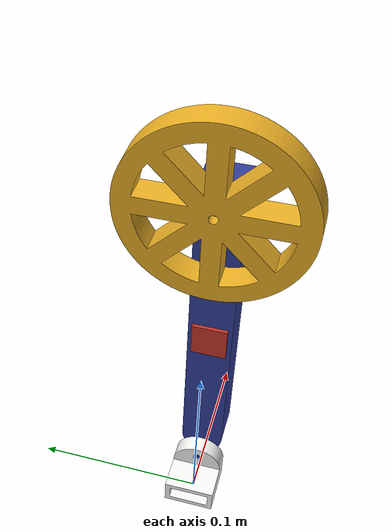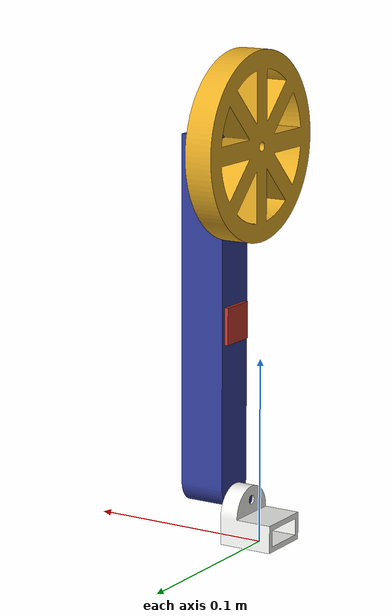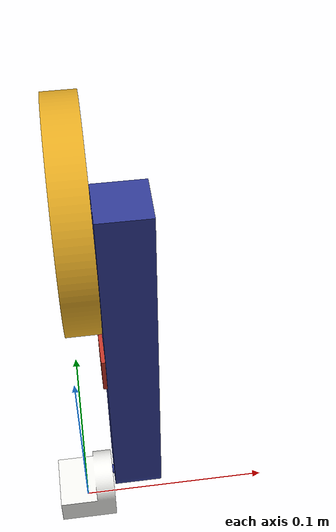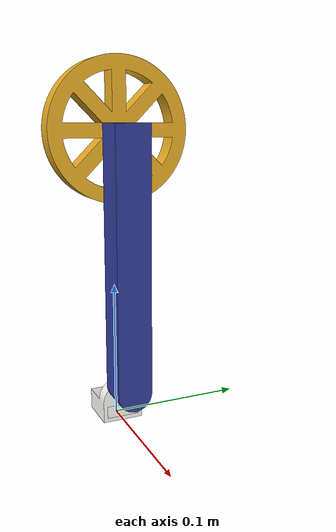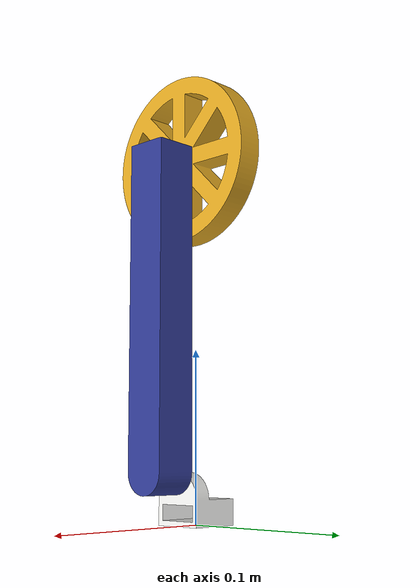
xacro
<?xml version="1.0" ?>
<robot name="reaction_wheel_pendulum" xmlns:xacro="http://www.ros.org/wiki/xacro">

<xacro:include filename="$(find reaction_wheel_pendulum_description)/urdf/materials.xacro" />
<xacro:include filename="$(find reaction_wheel_pendulum_description)/urdf/reaction_wheel_pendulum.trans" />
<xacro:include filename="$(find reaction_wheel_pendulum_description)/urdf/reaction_wheel_pendulum.gazebo" />
<link name="base_link">
  <inertial>
    <origin xyz="0.0032225920282034333 -3.4299415966115704e-18 0.011947016988234405" rpy="0 0 0"/>
    <mass value="0.01097941872610551"/>
    <inertia ixx="2e-06" iyy="2e-06" izz="2e-06" ixy="-0.0" iyz="-0.0" ixz="-0.0"/>
  </inertial>
  <visual>
    <origin xyz="0 0 0" rpy="0 0 0"/>
    <geometry>
      <mesh filename="package://reaction_wheel_pendulum_description/meshes/base_link.stl" scale="0.001 0.001 0.001"/>
    </geometry>
    <material name="abs_white"/>
  </visual>
  <collision>
    <origin xyz="0 0 0" rpy="0 0 0"/>
    <geometry>
      <mesh filename="package://reaction_wheel_pendulum_description/meshes/base_link.stl" scale="0.001 0.001 0.001"/>
    </geometry>
  </collision>
</link>

<link name="pendulum_1">
  <inertial>
    <origin xyz="0.013444451589609451 -8.5147131031773145e-16 0.09631734258207211" rpy="0 0 0"/>
    <mass value="0.13113908956723577"/>
    <inertia ixx="0.000435" iyy="0.000435" izz="1.4e-05" ixy="-0.0" iyz="-0.0" ixz="-0.0"/>
  </inertial>
  <visual>
    <origin xyz="-0.015 -0.0 -0.0225" rpy="0 0 0"/>
    <geometry>
      <mesh filename="package://reaction_wheel_pendulum_description/meshes/pendulum_1.stl" scale="0.001 0.001 0.001"/>
    </geometry>
    <material name="paint_enamel_glossy_blue"/>
  </visual>
  <collision>
    <origin xyz="-0.015 -0.0 -0.0225" rpy="0 0 0"/>
    <geometry>
      <mesh filename="package://reaction_wheel_pendulum_description/meshes/pendulum_1.stl" scale="0.001 0.001 0.001"/>
    </geometry>
  </collision>
</link>

<link name="reaction_wheel_1">
  <inertial>
    <origin xyz="-0.003499999999999996 5.2110442774784916e-17 8.881784197001252e-16" rpy="0 0 0"/>
    <mass value="0.07877708723089058"/>
    <inertia ixx="0.000107" iyy="5.5e-05" izz="5.5e-05" ixy="0.0" iyz="0.0" ixz="0.0"/>
  </inertial>
  <visual>
    <origin xyz="-0.011 0.0 -0.2125" rpy="0 0 0"/>
    <geometry>
      <mesh filename="package://reaction_wheel_pendulum_description/meshes/reaction_wheel_1.stl" scale="0.001 0.001 0.001"/>
    </geometry>
    <material name="paint_enamel_glossy_yellow"/>
  </visual>
  <collision>
    <origin xyz="-0.011 0.0 -0.2125" rpy="0 0 0"/>
    <geometry>
      <mesh filename="package://reaction_wheel_pendulum_description/meshes/reaction_wheel_1.stl" scale="0.001 0.001 0.001"/>
    </geometry>
  </collision>
</link>

<link name="gyroscope_1">
  <inertial>
    <origin xyz="-0.0010000000000000026 -1.7763568394002505e-17 -4.163336342344337e-17" rpy="0 0 0"/>
    <mass value="0.0017599999999999998"/>
    <inertia ixx="0.0" iyy="0.0" izz="0.0" ixy="0.0" iyz="0.0" ixz="0.0"/>
  </inertial>
  <visual>
    <origin xyz="-0.016 0.0 -0.1175" rpy="0 0 0"/>
    <geometry>
      <mesh filename="package://reaction_wheel_pendulum_description/meshes/gyroscope_1.stl" scale="0.001 0.001 0.001"/>
    </geometry>
    <material name="paint_enamel_glossy_red"/>
  </visual>
  <collision>
    <origin xyz="-0.016 0.0 -0.1175" rpy="0 0 0"/>
    <geometry>
      <mesh filename="package://reaction_wheel_pendulum_description/meshes/gyroscope_1.stl" scale="0.001 0.001 0.001"/>
    </geometry>
  </collision>
</link>

<joint name="pivot" type="continuous">
  <origin xyz="0.015 0.0 0.0225" rpy="0 0 0"/>
  <parent link="base_link"/>
  <child link="pendulum_1"/>
  <axis xyz="-1.0 0.0 0.0"/>
</joint>

<joint name="reaction_wheel" type="continuous">
  <origin xyz="-0.004 -0.0 0.19" rpy="0 0 0"/>
  <parent link="pendulum_1"/>
  <child link="reaction_wheel_1"/>
  <axis xyz="-1.0 0.0 -0.0"/>
</joint>

<joint name="gyro_connected" type="fixed">
  <origin xyz="0.001 -0.0 0.095" rpy="0 0 0"/>
  <parent link="pendulum_1"/>
  <child link="gyroscope_1"/>
</joint>

</robot>

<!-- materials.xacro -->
<robot name="reaction_wheel_pendulum" xmlns:xacro="http://www.ros.org/wiki/xacro" >

<material name="silver_default">
  <color rgba="0.700 0.700 0.700 1.000"/>
</material>
<material name="abs_white">
  <color rgba="0.9647058823529412 0.9647058823529412 0.9529411764705882 1.0"/>
</material>
<material name="paint_enamel_glossy_blue">
  <color rgba="0.18823529411764706 0.23137254901960785 0.5882352941176471 1.0"/>
</material>
<material name="paint_enamel_glossy_yellow">
  <color rgba="0.9098039215686274 0.6784313725490196 0.13725490196078433 1.0"/>
</material>
<material name="paint_enamel_glossy_red">
  <color rgba="0.7686274509803922 0.20784313725490197 0.15294117647058825 1.0"/>
</material>

</robot>

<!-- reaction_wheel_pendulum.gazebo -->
<robot name="reaction_wheel_pendulum" xmlns:xacro="http://www.ros.org/wiki/xacro" >

<xacro:property name="body_color" value="Gazebo/Silver" />

<gazebo>
  <plugin name="control" filename="libgazebo_ros_control.so"/>
</gazebo>
<gazebo reference="base_link">
  <material>${body_color}</material>
  <mu1>0.2</mu1>
  <mu2>0.2</mu2>
  <selfCollide>true</selfCollide>
  <gravity>true</gravity>
</gazebo>

<gazebo reference="pendulum_1">
  <material>${body_color}</material>
  <mu1>0.2</mu1>
  <mu2>0.2</mu2>
  <selfCollide>true</selfCollide>
</gazebo>

<gazebo reference="reaction_wheel_1">
  <material>${body_color}</material>
  <mu1>0.2</mu1>
  <mu2>0.2</mu2>
  <selfCollide>true</selfCollide>
</gazebo>

<gazebo reference="gyroscope_1">
  <material>${body_color}</material>
  <mu1>0.2</mu1>
  <mu2>0.2</mu2>
  <selfCollide>true</selfCollide>
</gazebo>

</robot>
